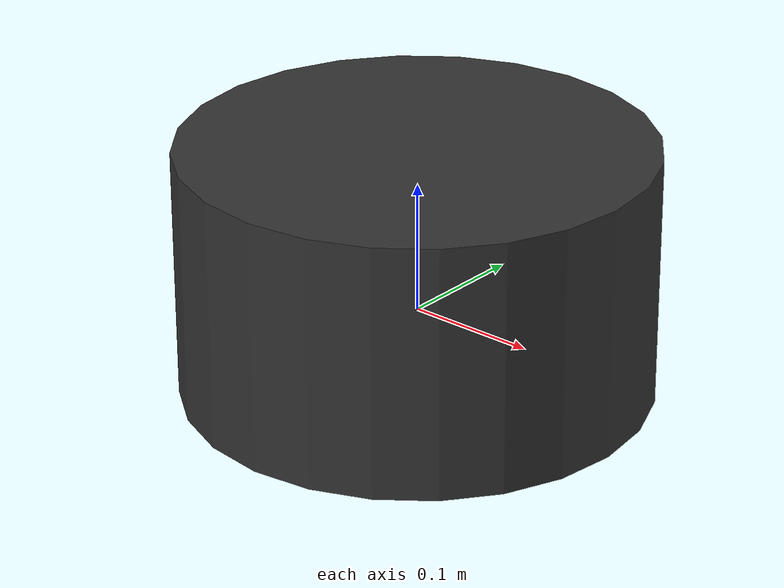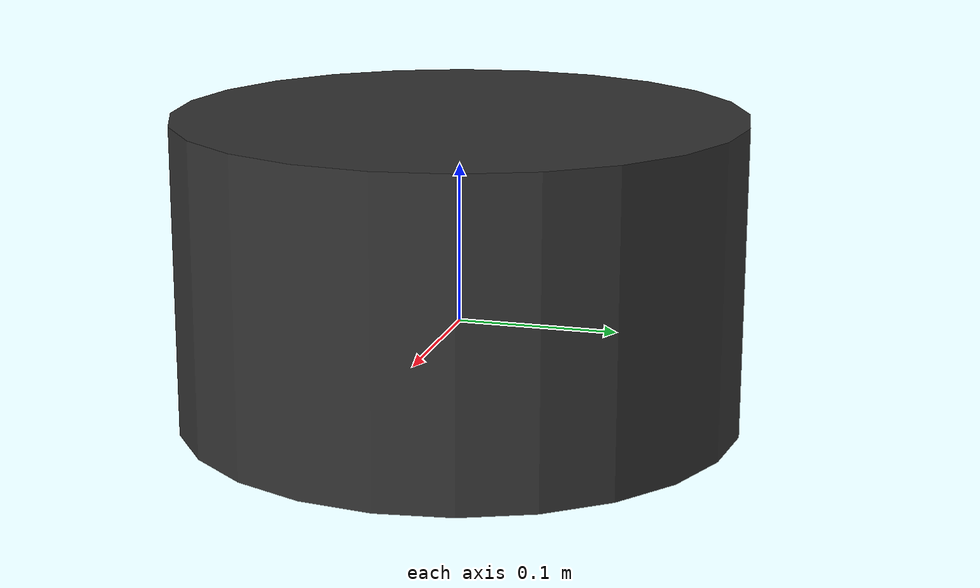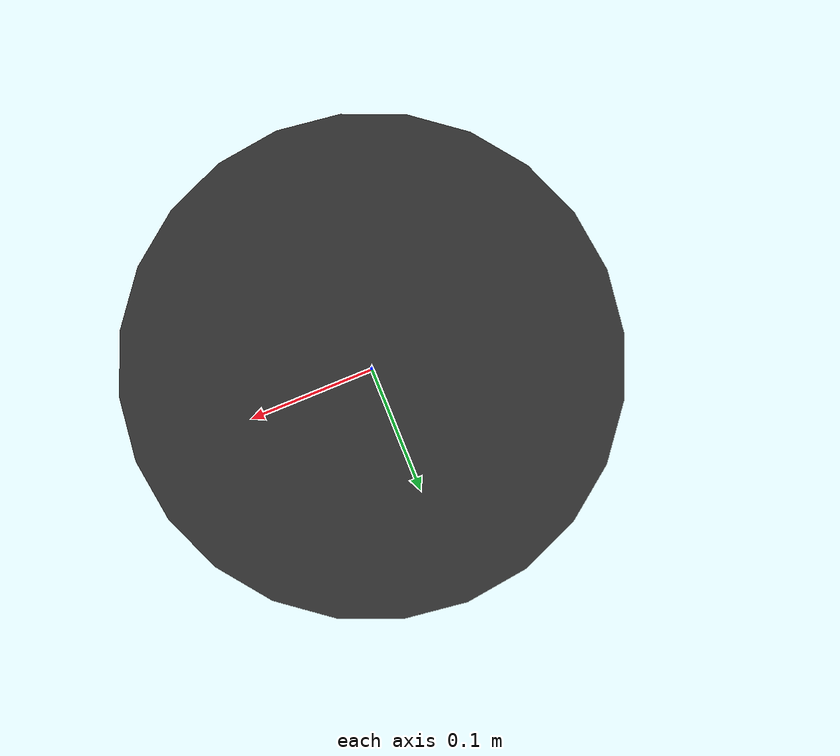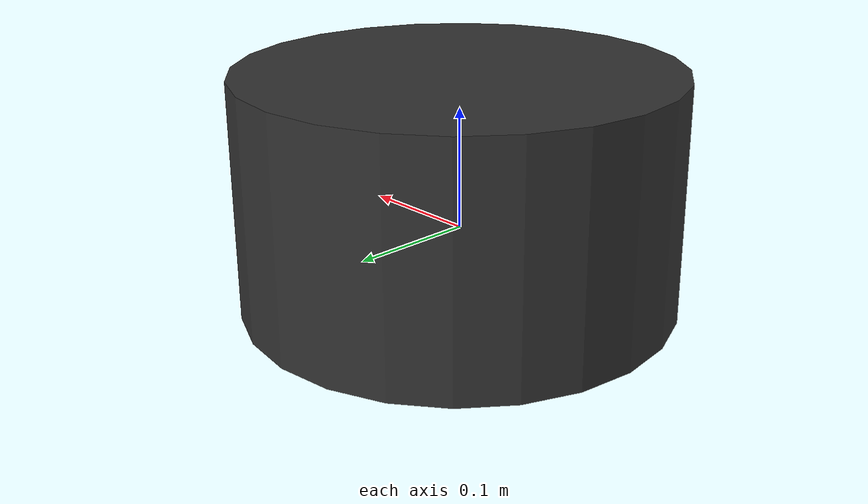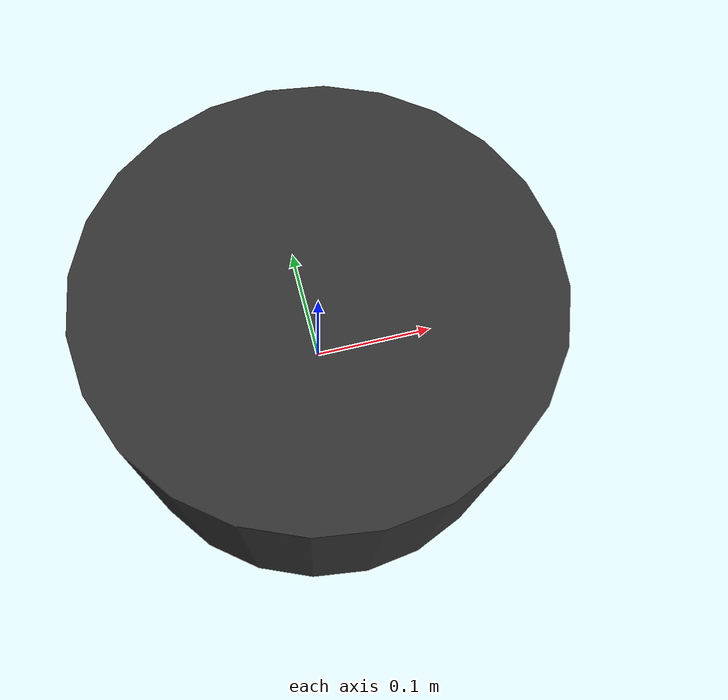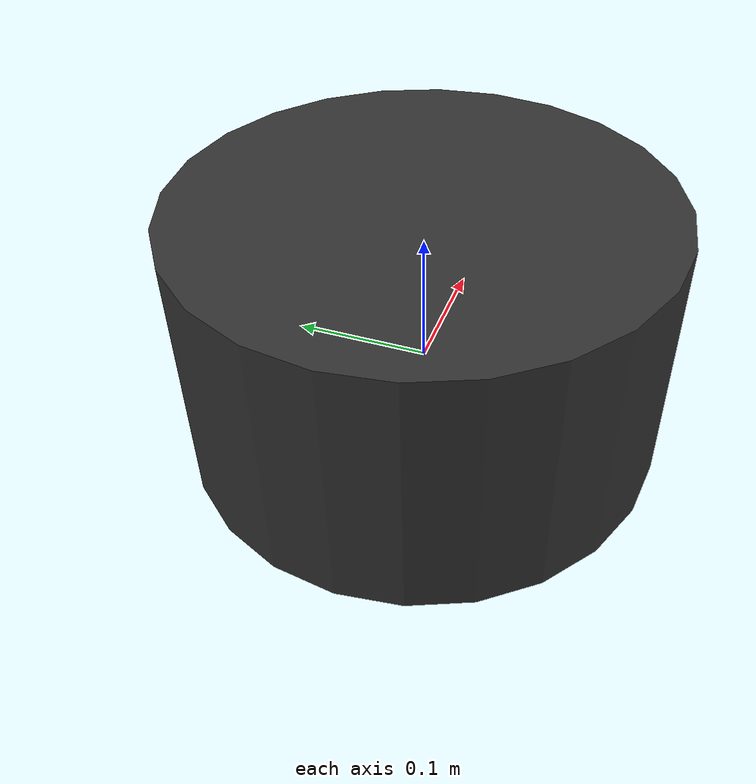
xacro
<?xml version="1.0"?>
<robot xmlns:xacro="http://www.ros.org/wiki/xacro">

  <xacro:property name="base_radius"       value="0.1775"/>
  <xacro:property name="base_height"       value="0.192"/>
  <xacro:property name="base_mass"         value="4.0"/>

  <xacro:property name="wheel_radius"      value="0.0352"/>
  <xacro:property name="wheel_width"       value="0.0182"/>
  <xacro:property name="wheel_mass"        value="0.1"/>
  <xacro:property name="wheel_separation"  value="0.233"/>

  <xacro:property name="caster_radius"     value="0.015"/>
  <xacro:property name="caster_mass"       value="0.05"/>

  <!-- ==================== INERTIA MACROS ======================= -->
  <xacro:macro name="cylinder_inertia" params="mass radius length">
    <inertial>
      <mass value="${mass}"/>
      <inertia
        ixx="${(mass*(3*radius*radius + length*length))/12}"
        ixy="0" ixz="0"
        iyy="${(mass*(3*radius*radius + length*length))/12}"
        iyz="0"
        izz="${(mass*radius*radius)/2}"/>
    </inertial>
  </xacro:macro>

  <xacro:macro name="sphere_inertia" params="mass radius">
    <inertial>
      <mass value="${mass}"/>
      <inertia
        ixx="${(2*mass*radius*radius)/5}"
        ixy="0" ixz="0"
        iyy="${(2*mass*radius*radius)/5}"
        iyz="0"
        izz="${(2*mass*radius*radius)/5}"/>
    </inertial>
  </xacro:macro>

  <xacro:macro name="box_inertia" params="mass x y z">
    <inertial>
      <mass value="${mass}"/>
      <inertia
        ixx="${(mass*(y*y + z*z))/12}"
        ixy="0" ixz="0"
        iyy="${(mass*(x*x + z*z))/12}"
        iyz="0"
        izz="${(mass*(x*x + y*y))/12}"/>
    </inertial>
  </xacro:macro>

  <!-- ==================== BASE FOOTPRINT ======================= -->
  <link name="base_footprint"/>

  <joint name="base_footprint_joint" type="fixed">
    <parent link="base_footprint"/>
    <child  link="base_link"/>
    <origin xyz="0 0 ${wheel_radius}" rpy="0 0 0"/>
  </joint>

  <!-- ==================== BASE LINK ============================ -->
  <link name="base_link">
    <visual>
      <origin xyz="0 0 0" rpy="0 0 0"/>
      <geometry>
        <cylinder radius="${base_radius}" length="${base_height}"/>
      </geometry>
      <material name="dark_gray">
        <color rgba="0.2 0.2 0.2 1.0"/>
      </material>
    </visual>
    <collision>
      <origin xyz="0 0 0" rpy="0 0 0"/>
      <geometry>
        <cylinder radius="${base_radius}" length="${base_height}"/>
      </geometry>
    </collision>
    <xacro:cylinder_inertia mass="${base_mass}" radius="${base_radius}" length="${base_height}"/>
  </link>

  <!-- ==================== WHEEL MACRO ========================== -->
  <xacro:macro name="wheel" params="name side y_offset">
    <link name="${name}_wheel_link">
      <visual>
        <origin xyz="0 0 0" rpy="${pi/2} 0 0"/>
        <geometry>
          <cylinder radius="${wheel_radius}" length="${wheel_width}"/>
        </geometry>
        <material name="black">
          <color rgba="0.05 0.05 0.05 1.0"/>
        </material>
      </visual>
      <collision>
        <origin xyz="0 0 0" rpy="${pi/2} 0 0"/>
        <geometry>
          <cylinder radius="${wheel_radius}" length="${wheel_width}"/>
        </geometry>
      </collision>
      <xacro:cylinder_inertia mass="${wheel_mass}" radius="${wheel_radius}" length="${wheel_width}"/>
    </link>

    <joint name="${name}_wheel_joint" type="continuous">
      <parent link="base_link"/>
      <child  link="${name}_wheel_link"/>
      <origin xyz="0 ${y_offset} ${-base_height/2 + wheel_radius}" rpy="0 0 0"/>
      <axis xyz="0 1 0"/>
      <dynamics damping="0.1" friction="0.1"/>
    </joint>

    <gazebo reference="${name}_wheel_link">
      <mu1>1.0</mu1>
      <mu2>0.5</mu2>
      <kp>1000000.0</kp>
      <kd>100.0</kd>
      <material>Gazebo/Black</material>
    </gazebo>
  </xacro:macro>

  <xacro:wheel name="left"  side="left"  y_offset=" ${wheel_separation/2}"/>
  <xacro:wheel name="right" side="right" y_offset="-${wheel_separation/2}"/>

  <!-- ==================== CASTER WHEELS ======================= -->
  <xacro:macro name="caster" params="name x_offset y_offset">
    <link name="${name}_caster_link">
      <visual>
        <geometry><sphere radius="${caster_radius}"/></geometry>
        <material name="gray"><color rgba="0.5 0.5 0.5 1.0"/></material>
      </visual>
      <collision>
        <geometry><sphere radius="${caster_radius}"/></geometry>
      </collision>
      <xacro:sphere_inertia mass="${caster_mass}" radius="${caster_radius}"/>
    </link>
    <joint name="${name}_caster_joint" type="fixed">
      <parent link="base_link"/>
      <child  link="${name}_caster_link"/>
      <origin xyz="${x_offset} ${y_offset} ${-base_height/2 + caster_radius}" rpy="0 0 0"/>
    </joint>
    <gazebo reference="${name}_caster_link">
      <mu1>0.0</mu1>
      <mu2>0.0</mu2>
      <material>Gazebo/Grey</material>
    </gazebo>
  </xacro:macro>

  <xacro:caster name="front_left"  x_offset=" 0.12" y_offset=" 0.10"/>
  <xacro:caster name="front_right" x_offset=" 0.12" y_offset="-0.10"/>
  <xacro:caster name="rear_left"   x_offset="-0.12" y_offset=" 0.10"/>
  <xacro:caster name="rear_right"  x_offset="-0.12" y_offset="-0.10"/>

  <!-- ==================== GAZEBO DIFF DRIVE =================== -->
  <gazebo>
    <plugin filename="gz-sim-diff-drive-system"
            name="gz::sim::systems::DiffDrive">
      <left_joint>left_wheel_joint</left_joint>
      <right_joint>right_wheel_joint</right_joint>
      <wheel_separation>${wheel_separation}</wheel_separation>
      <wheel_radius>${wheel_radius}</wheel_radius>
      <odom_publish_frequency>30</odom_publish_frequency>
      <topic>cmd_vel</topic>
      <odom_topic>odom</odom_topic>
      <tf_topic>tf</tf_topic>
      <frame_id>odom</frame_id>
      <child_frame_id>base_footprint</child_frame_id>
      <max_linear_acceleration>1.0</max_linear_acceleration>
      <max_angular_acceleration>2.0</max_angular_acceleration>
    </plugin>
  </gazebo>

  <!-- Joint state publisher for wheels -->
  <gazebo>
    <plugin filename="gz-sim-joint-state-publisher-system"
            name="gz::sim::systems::JointStatePublisher">
      <joint_name>left_wheel_joint</joint_name>
      <joint_name>right_wheel_joint</joint_name>
    </plugin>
  </gazebo>

</robot>
